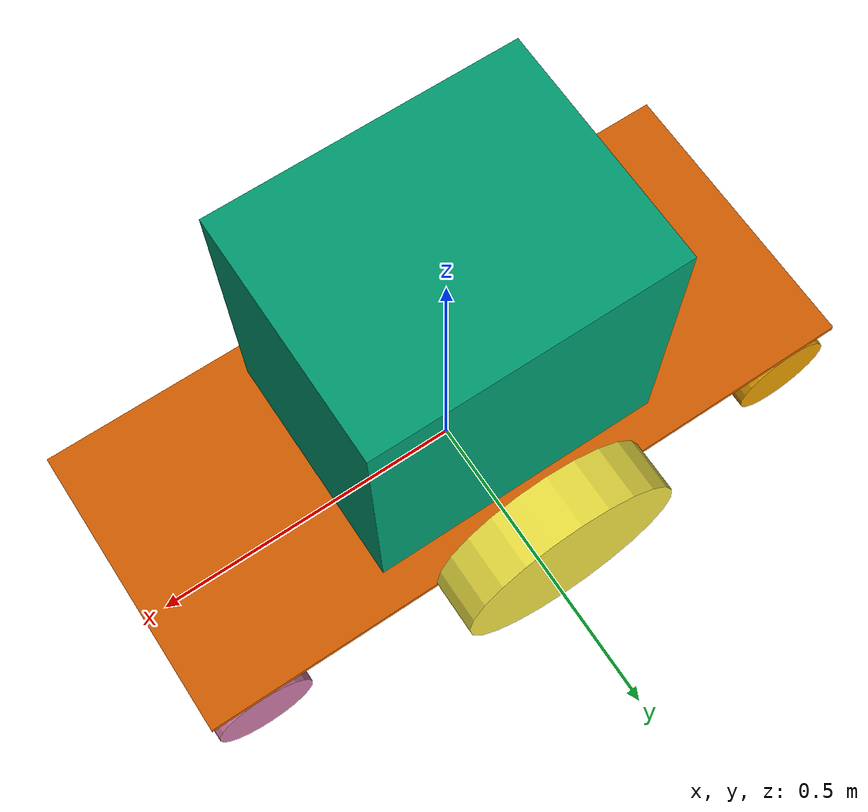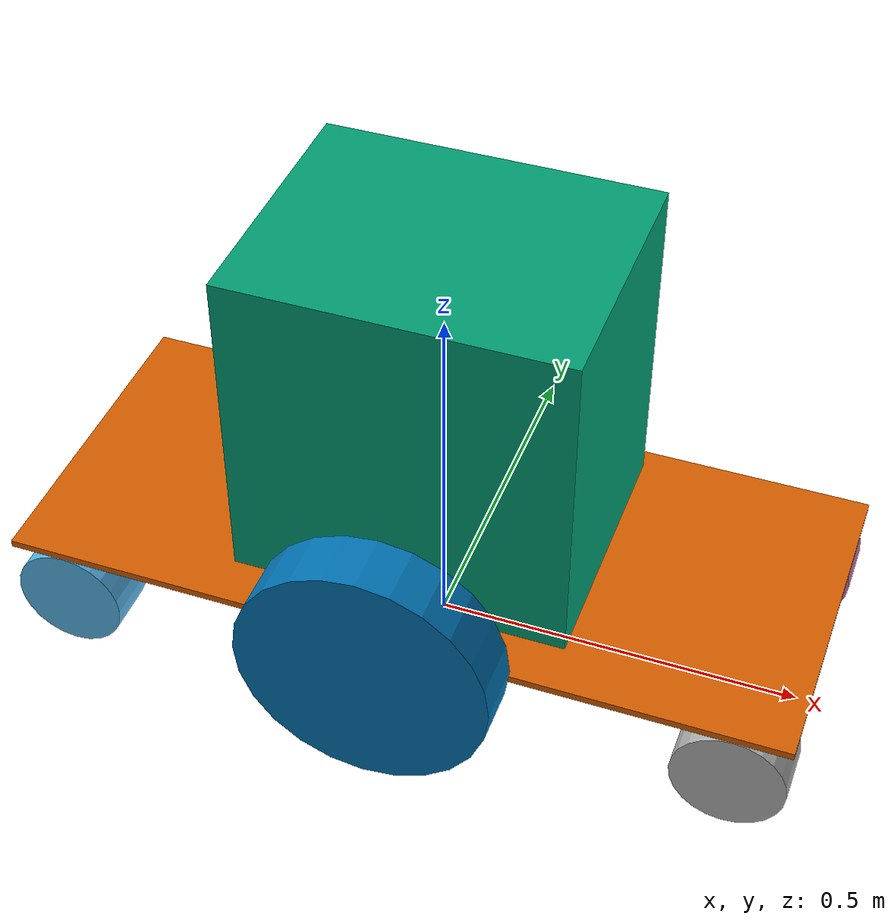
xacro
<?xml version="1.0"?>

<!--
  Generic diff_drive platform model.

-->
<robot xmlns:xacro="http://ros.org/wiki/xacro">
  <xacro:include filename="$(find diff_drive)/urdf/solids.xacro"/>

  <link name="base_footprint"/>

  <link name="base_link"/>
  <joint name="base_link_joint" type="fixed">
    <parent link="base_footprint"/>
    <child link="base_link"/>
    <origin xyz="0.0 0.0 0.17" rpy="0 0 0"/>
  </joint>

  <link name="body">
    <xacro:solid_box x="0.45" y="0.36" z="0.45" mass="40.0">
      <color rgba="0.25 0.25 0.25 1.0"/>
    </xacro:solid_box>
  </link>
  <joint name="body_joint" type="fixed">
    <parent link="base_link"/>
    <child link="body"/>
    <origin xyz="0.0 0.0 0.235" rpy="0 0 0"/>
  </joint>

  <xacro:macro name="wheel" params="suffix x y z">
    <link name="wheel_${suffix}">
      <xacro:solid_cylinder radius="0.17" length="0.08" mass="1.0">
        <color rgba="0.75 0.75 0.75 1.0"/>
      </xacro:solid_cylinder>
    </link>
    <joint name="wheel_${suffix}_hinge" type="continuous">
      <parent link="base_link"/>
      <child link="wheel_${suffix}"/>
      <origin xyz="${x} ${y} ${z}" rpy="-1.5707 0 0"/>
      <axis xyz="0 0 1"/>
    </joint>
  </xacro:macro>

  <xacro:wheel suffix="left"  x="0.0" y="0.27" z="0.0"/>
  <xacro:wheel suffix="right" x="0.0" y="-0.27" z="0.0"/>

  <link name="casters_support">
    <xacro:solid_box x="1.06" y="0.46" z="0.01" mass="0.1">
      <color rgba="0.25 0.25 0.25 1.0"/>
    </xacro:solid_box>
  </link>
  <joint name="casters_support_joint" type="fixed">
    <parent link="body"/>
    <child link="casters_support"/>
    <origin xyz="0.0 0.0 -0.25" rpy="0 0 0" />
  </joint>

  <xacro:macro name="caster" params="suffix x y z">
    <link name="caster_${suffix}">
      <xacro:solid_sphere radius="0.075" mass="0.1" visible="false">
        <color rgba="0.75 0.75 0.75 1.0"/>
      </xacro:solid_sphere>
      <visual>
        <origin xyz="0 0 0" rpy="1.5707 0 0"/>
        <geometry>
          <cylinder radius="0.075" length="0.08"/>
        </geometry>
      </visual>
    </link>
    <joint name="caster_${suffix}_joint" type="fixed">
      <parent link="casters_support"/>
      <child link="caster_${suffix}"/>
      <origin xyz="${x} ${y} ${z}" rpy="0 0 0"/>
    </joint>
  </xacro:macro>

  <xacro:caster suffix="front_left"  x="0.455" y="0.19" z="-0.08"/>
  <xacro:caster suffix="front_right" x="0.455" y="-0.19" z="-0.08"/>
  <xacro:caster suffix="back_left"   x="-0.455" y="0.19" z="-0.08"/>
  <xacro:caster suffix="back_right"  x="-0.455" y="-0.19" z="-0.08"/>
</robot>

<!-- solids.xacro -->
<robot xmlns:xacro="http://ros.org/wiki/xacro">
  <xacro:macro name="solid" params="mass ixx iyy izz visible *shape *material">
    <xacro:if value="${visible}">
      <visual>
        <geometry>
          <xacro:insert_block name="shape"/>
        </geometry>
      </visual>
    </xacro:if>
    <collision>
      <geometry>
        <xacro:insert_block name="shape"/>
      </geometry>
    </collision>
    <inertial>
      <mass value="${mass}"/>
      <inertia
        ixx="${ixx}" ixy="0.0"    ixz="0.0"
                     iyy="${iyy}" iyz="0.0"
                                  izz="${izz}"
      />
    </inertial>
    <material>
      <xacro:insert_block name="material"/>
    </material>
  </xacro:macro>

  <xacro:macro name="solid_box" params="x y z mass visible:=true *material">
    <xacro:solid
      mass="${mass}"
      ixx="${0.0833333 * mass * (y*y + z*z)}"
      iyy="${0.0833333 * mass * (x*x + z*z)}"
      izz="${0.0833333 * mass * (x*x + y*y)}"
      visible="${visible}"
    >
      <box size="${x} ${y} ${z}"/>
      <xacro:insert_block name="material"/>
    </xacro:solid>
  </xacro:macro>

  <xacro:macro name="solid_cylinder" params="radius length mass visible:=true *material">
    <xacro:solid
      mass="${mass}"
      ixx="${0.0833333 * mass * (3 * radius * radius + length * length)}"
      iyy="${0.0833333 * mass * (3 * radius * radius + length * length)}"
      izz="${0.5 * mass * radius * radius}"
      visible="${visible}"
    >
      <cylinder radius="${radius}" length="${length}"/>
      <xacro:insert_block name="material"/>
    </xacro:solid>
  </xacro:macro>

  <xacro:macro name="solid_sphere" params="radius mass visible:=true *material">
    <xacro:solid
      mass="${mass}"
      ixx="${0.4 * mass * radius * radius}"
      iyy="${0.4 * mass * radius * radius}"
      izz="${0.4 * mass * radius * radius}"
      visible="${visible}"
    >
      <sphere radius="${radius}"/>
      <xacro:insert_block name="material"/>
    </xacro:solid>
  </xacro:macro>
</robot>
